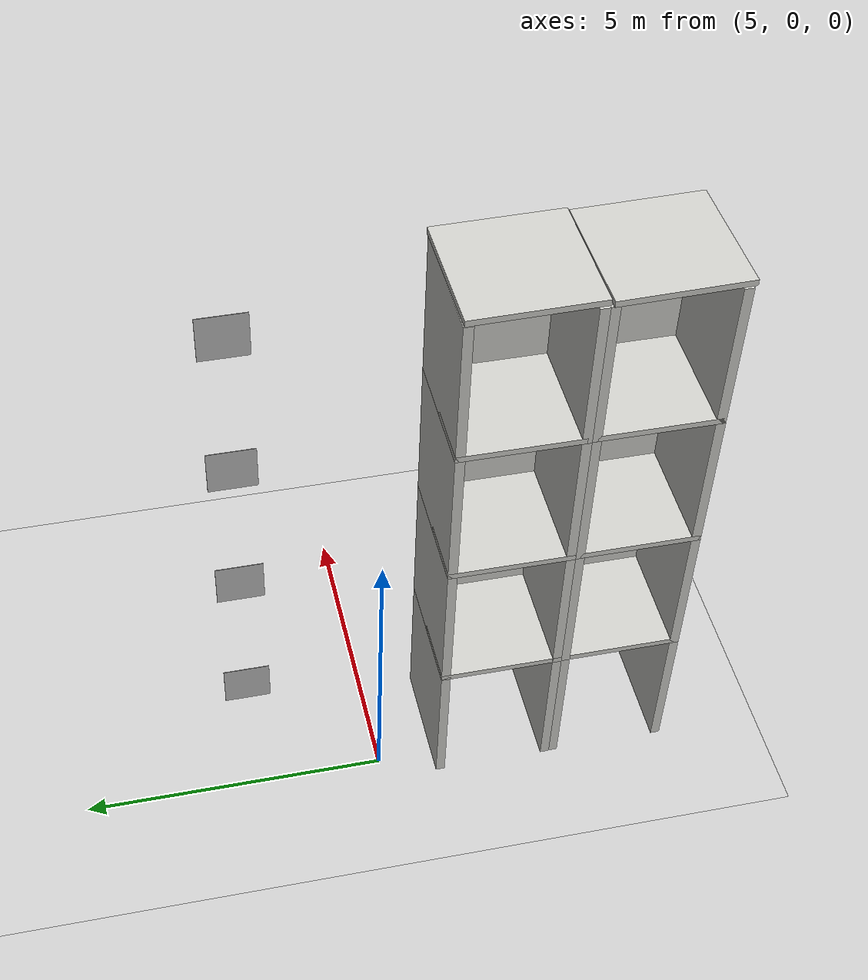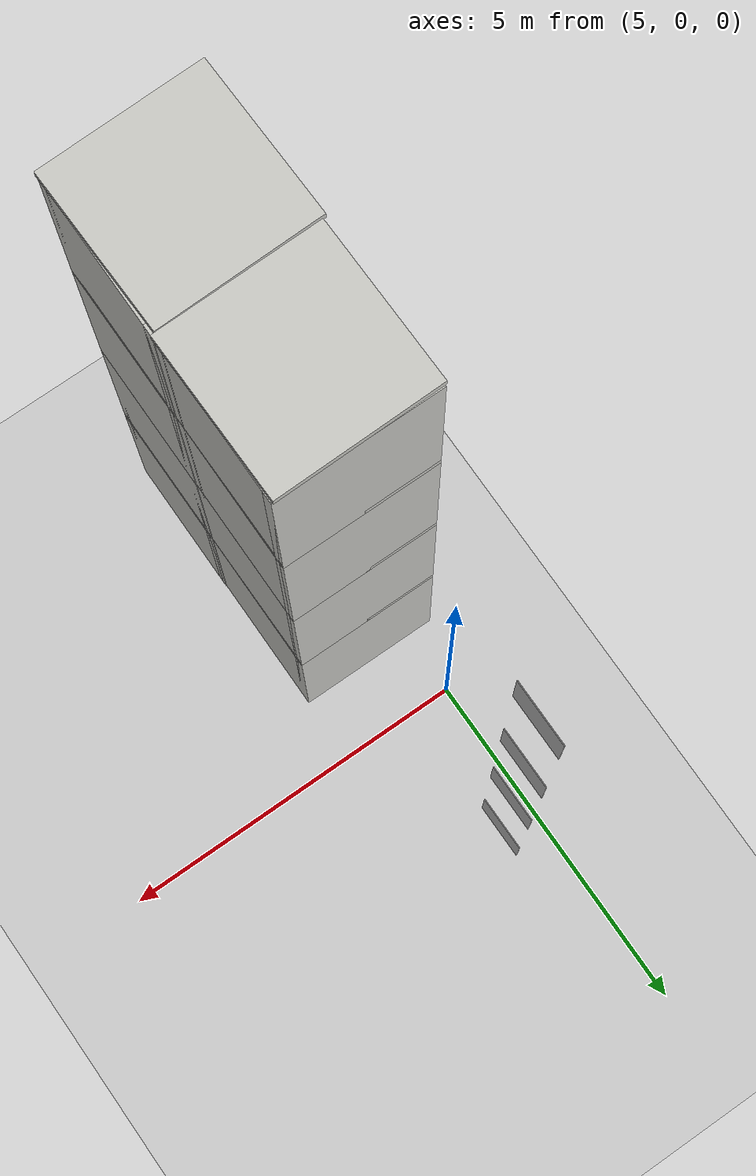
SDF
<sdf version="1.7">
 <world name="default">
  <model name="ground_plane">
   <static>1</static>
   <link name="link">
    <collision name="collision">
     <geometry><plane><normal>0 0 1</normal><size>100 100</size></plane></geometry>
     <surface>
      <contact><collide_bitmask>65535</collide_bitmask></contact>
      <friction><ode><mu>100</mu><mu2>50</mu2></ode></friction>
     </surface>
    </collision>
    <visual name="visual">
     <cast_shadows>0</cast_shadows>
     <geometry><plane><normal>0 0 1</normal><size>100 100</size></plane></geometry>
     <material>
      <script><uri>file://media/materials/scripts/gazebo.material</uri><name>Gazebo/Grey</name></script>
     </material>
    </visual>
   </link>
  </model>
  <model name="twin_4th_building">
   <link name="Floor_1">
    <pose>-1.9225 -0.6325 2.5 0 -0 0</pose>
    <visual name="Floor_1_Visual">
     <pose>0 0 0.05 0 -0 0</pose>
     <geometry><box><size>2 2 0.1</size></box></geometry>
     <material>
      <script><uri>file://media/materials/scripts/gazebo.material</uri><name>Gazebo/CeilingTiled</name></script>
      <ambient>1 1 1 1</ambient>
      <shader type="pixel"/>
      <emissive>0 0 0 1</emissive>
     </material>
     <meta><layer>1</layer></meta>
    </visual>
    <collision name="Floor_1_Collision">
     <pose>0 0 0.05 0 -0 0</pose>
     <geometry><box><size>2 2 0.1</size></box></geometry>
     <surface>
      <friction>
       <ode><mu>1</mu><mu2>1</mu2><fdir1>0 0 0</fdir1><slip1>0</slip1><slip2>0</slip2></ode>
       <torsional>
        <coefficient>1</coefficient>
        <patch_radius>0</patch_radius>
        <surface_radius>0</surface_radius>
        <use_patch_radius>1</use_patch_radius>
        <ode><slip>0</slip></ode>
       </torsional>
      </friction>
      <bounce><restitution_coefficient>0</restitution_coefficient><threshold>1e+06</threshold></bounce>
      <contact>
       <collide_without_contact>0</collide_without_contact>
       <collide_without_contact_bitmask>1</collide_without_contact_bitmask>
       <collide_bitmask>1</collide_bitmask>
       <ode>
        <soft_cfm>0</soft_cfm>
        <soft_erp>0.2</soft_erp>
        <kp>1e+13</kp>
        <kd>1</kd>
        <max_vel>0.01</max_vel>
        <min_depth>0</min_depth>
       </ode>
       <bullet>
        <split_impulse>1</split_impulse>
        <split_impulse_penetration_threshold>-0.01</split_impulse_penetration_threshold>
        <soft_cfm>0</soft_cfm>
        <soft_erp>0.2</soft_erp>
        <kp>1e+13</kp>
        <kd>1</kd>
       </bullet>
      </contact>
     </surface>
    </collision>
   </link>
   <link name="Floor_10">
    <pose>-1.9225 -0.6325 7.5 0 -0 0</pose>
    <visual name="Floor_10_Visual">
     <pose>0 0 0.05 0 -0 0</pose>
     <geometry><box><size>2 2 0.1</size></box></geometry>
     <material>
      <script><uri>file://media/materials/scripts/gazebo.material</uri><name>Gazebo/CeilingTiled</name></script>
      <ambient>1 1 1 1</ambient>
      <shader type="pixel"/>
      <emissive>0 0 0 1</emissive>
     </material>
     <meta><layer>3</layer></meta>
    </visual>
    <collision name="Floor_10_Collision">
     <pose>0 0 0.05 0 -0 0</pose>
     <geometry><box><size>2 2 0.1</size></box></geometry>
     <surface>
      <friction>
       <ode><mu>1</mu><mu2>1</mu2><fdir1>0 0 0</fdir1><slip1>0</slip1><slip2>0</slip2></ode>
       <torsional>
        <coefficient>1</coefficient>
        <patch_radius>0</patch_radius>
        <surface_radius>0</surface_radius>
        <use_patch_radius>1</use_patch_radius>
        <ode><slip>0</slip></ode>
       </torsional>
      </friction>
      <bounce><restitution_coefficient>0</restitution_coefficient><threshold>1e+06</threshold></bounce>
      <contact>
       <collide_without_contact>0</collide_without_contact>
       <collide_without_contact_bitmask>1</collide_without_contact_bitmask>
       <collide_bitmask>1</collide_bitmask>
       <ode>
        <soft_cfm>0</soft_cfm>
        <soft_erp>0.2</soft_erp>
        <kp>1e+13</kp>
        <kd>1</kd>
        <max_vel>0.01</max_vel>
        <min_depth>0</min_depth>
       </ode>
       <bullet>
        <split_impulse>1</split_impulse>
        <split_impulse_penetration_threshold>-0.01</split_impulse_penetration_threshold>
        <soft_cfm>0</soft_cfm>
        <soft_erp>0.2</soft_erp>
        <kp>1e+13</kp>
        <kd>1</kd>
       </bullet>
      </contact>
     </surface>
    </collision>
   </link>
   <link name="Floor_10_clone">
    <pose>-1.91647 -0.637292 10.0203 0 0 -1.55375</pose>
    <visual name="Floor_10_Visual">
     <pose>0 0 0.05 0 -0 0</pose>
     <geometry><box><size>2 2 0.1</size></box></geometry>
     <material>
      <script><uri>file://media/materials/scripts/gazebo.material</uri><name>Gazebo/CeilingTiled</name></script>
      <ambient>1 1 1 1</ambient>
      <shader type="pixel"/>
      <emissive>0 0 0 1</emissive>
     </material>
     <meta><layer>3</layer></meta>
    </visual>
    <collision name="Floor_10_Collision">
     <pose>0 0 0.05 0 -0 0</pose>
     <geometry><box><size>2 2 0.1</size></box></geometry>
     <surface>
      <friction>
       <ode><mu>1</mu><mu2>1</mu2><fdir1>0 0 0</fdir1><slip1>0</slip1><slip2>0</slip2></ode>
       <torsional>
        <coefficient>1</coefficient>
        <patch_radius>0</patch_radius>
        <surface_radius>0</surface_radius>
        <use_patch_radius>1</use_patch_radius>
        <ode><slip>0</slip></ode>
       </torsional>
      </friction>
      <bounce><restitution_coefficient>0</restitution_coefficient><threshold>1e+06</threshold></bounce>
      <contact>
       <collide_without_contact>0</collide_without_contact>
       <collide_without_contact_bitmask>1</collide_without_contact_bitmask>
       <collide_bitmask>1</collide_bitmask>
       <ode>
        <soft_cfm>0</soft_cfm>
        <soft_erp>0.2</soft_erp>
        <kp>1e+13</kp>
        <kd>1</kd>
        <max_vel>0.01</max_vel>
        <min_depth>0</min_depth>
       </ode>
       <bullet>
        <split_impulse>1</split_impulse>
        <split_impulse_penetration_threshold>-0.01</split_impulse_penetration_threshold>
        <soft_cfm>0</soft_cfm>
        <soft_erp>0.2</soft_erp>
        <kp>1e+13</kp>
        <kd>1</kd>
       </bullet>
      </contact>
     </surface>
    </collision>
   </link>
   <link name="Floor_10_clone_clone">
    <pose>-3.93376 -0.629613 10.0203 0 0 -3.11619</pose>
    <visual name="Floor_10_Visual">
     <pose>0 0 0.05 0 -0 0</pose>
     <geometry><box><size>2 2 0.1</size></box></geometry>
     <material>
      <script><uri>file://media/materials/scripts/gazebo.material</uri><name>Gazebo/CeilingTiled</name></script>
      <ambient>1 1 1 1</ambient>
      <shader type="pixel"/>
      <emissive>0 0 0 1</emissive>
     </material>
     <meta><layer>3</layer></meta>
    </visual>
    <collision name="Floor_10_Collision">
     <pose>0 0 0.05 0 -0 0</pose>
     <geometry><box><size>2 2 0.1</size></box></geometry>
     <surface>
      <friction>
       <ode><mu>1</mu><mu2>1</mu2><fdir1>0 0 0</fdir1><slip1>0</slip1><slip2>0</slip2></ode>
       <torsional>
        <coefficient>1</coefficient>
        <patch_radius>0</patch_radius>
        <surface_radius>0</surface_radius>
        <use_patch_radius>1</use_patch_radius>
        <ode><slip>0</slip></ode>
       </torsional>
      </friction>
      <bounce><restitution_coefficient>0</restitution_coefficient><threshold>1e+06</threshold></bounce>
      <contact>
       <collide_without_contact>0</collide_without_contact>
       <collide_without_contact_bitmask>1</collide_without_contact_bitmask>
       <collide_bitmask>1</collide_bitmask>
       <ode>
        <soft_cfm>0</soft_cfm>
        <soft_erp>0.2</soft_erp>
        <kp>1e+13</kp>
        <kd>1</kd>
        <max_vel>0.01</max_vel>
        <min_depth>0</min_depth>
       </ode>
       <bullet>
        <split_impulse>1</split_impulse>
        <split_impulse_penetration_threshold>-0.01</split_impulse_penetration_threshold>
        <soft_cfm>0</soft_cfm>
        <soft_erp>0.2</soft_erp>
        <kp>1e+13</kp>
        <kd>1</kd>
       </bullet>
      </contact>
     </surface>
    </collision>
   </link>
   <link name="Floor_9">
    <pose>-1.9225 -0.6325 5 0 -0 0</pose>
    <visual name="Floor_9_Visual">
     <pose>0 0 0.05 0 -0 0</pose>
     <geometry><box><size>2 2 0.1</size></box></geometry>
     <material>
      <script><uri>file://media/materials/scripts/gazebo.material</uri><name>Gazebo/CeilingTiled</name></script>
      <ambient>1 1 1 1</ambient>
      <shader type="pixel"/>
      <emissive>0 0 0 1</emissive>
     </material>
     <meta><layer>2</layer></meta>
    </visual>
    <collision name="Floor_9_Collision">
     <pose>0 0 0.05 0 -0 0</pose>
     <geometry><box><size>2 2 0.1</size></box></geometry>
     <surface>
      <friction>
       <ode><mu>1</mu><mu2>1</mu2><fdir1>0 0 0</fdir1><slip1>0</slip1><slip2>0</slip2></ode>
       <torsional>
        <coefficient>1</coefficient>
        <patch_radius>0</patch_radius>
        <surface_radius>0</surface_radius>
        <use_patch_radius>1</use_patch_radius>
        <ode><slip>0</slip></ode>
       </torsional>
      </friction>
      <bounce><restitution_coefficient>0</restitution_coefficient><threshold>1e+06</threshold></bounce>
      <contact>
       <collide_without_contact>0</collide_without_contact>
       <collide_without_contact_bitmask>1</collide_without_contact_bitmask>
       <collide_bitmask>1</collide_bitmask>
       <ode>
        <soft_cfm>0</soft_cfm>
        <soft_erp>0.2</soft_erp>
        <kp>1e+13</kp>
        <kd>1</kd>
        <max_vel>0.01</max_vel>
        <min_depth>0</min_depth>
       </ode>
       <bullet>
        <split_impulse>1</split_impulse>
        <split_impulse_penetration_threshold>-0.01</split_impulse_penetration_threshold>
        <soft_cfm>0</soft_cfm>
        <soft_erp>0.2</soft_erp>
        <kp>1e+13</kp>
        <kd>1</kd>
       </bullet>
      </contact>
     </surface>
    </collision>
   </link>
   <link name="Wall_13">
    <pose>-2.8475 -0.6325 0 0 0 -1.5708</pose>
    <visual name="Wall_13_Visual">
     <pose>0 0 1.25 0 -0 0</pose>
     <geometry><box><size>2 0.15 2.5</size></box></geometry>
     <material>
      <script><uri>file://media/materials/scripts/gazebo.material</uri><name>Gazebo/CeilingTiled</name></script>
      <ambient>1 1 1 1</ambient>
      <shader type="pixel"/>
      <emissive>0 0 0 1</emissive>
     </material>
     <meta><layer>0</layer></meta>
    </visual>
    <collision name="Wall_13_Collision">
     <pose>0 0 1.25 0 -0 0</pose>
     <geometry><box><size>2 0.15 2.5</size></box></geometry>
     <surface>
      <friction>
       <ode><mu>1</mu><mu2>1</mu2><fdir1>0 0 0</fdir1><slip1>0</slip1><slip2>0</slip2></ode>
       <torsional>
        <coefficient>1</coefficient>
        <patch_radius>0</patch_radius>
        <surface_radius>0</surface_radius>
        <use_patch_radius>1</use_patch_radius>
        <ode><slip>0</slip></ode>
       </torsional>
      </friction>
      <bounce><restitution_coefficient>0</restitution_coefficient><threshold>1e+06</threshold></bounce>
      <contact>
       <collide_without_contact>0</collide_without_contact>
       <collide_without_contact_bitmask>1</collide_without_contact_bitmask>
       <collide_bitmask>1</collide_bitmask>
       <ode>
        <soft_cfm>0</soft_cfm>
        <soft_erp>0.2</soft_erp>
        <kp>1e+13</kp>
        <kd>1</kd>
        <max_vel>0.01</max_vel>
        <min_depth>0</min_depth>
       </ode>
       <bullet>
        <split_impulse>1</split_impulse>
        <split_impulse_penetration_threshold>-0.01</split_impulse_penetration_threshold>
        <soft_cfm>0</soft_cfm>
        <soft_erp>0.2</soft_erp>
        <kp>1e+13</kp>
        <kd>1</kd>
       </bullet>
      </contact>
     </surface>
    </collision>
   </link>
   <link name="Wall_14">
    <pose>-1.9225 -1.5575 0 0 -0 0</pose>
    <visual name="Wall_14_Visual">
     <pose>0 0 1.25 0 -0 0</pose>
     <geometry><box><size>2 0.15 2.5</size></box></geometry>
     <material>
      <script><uri>file://media/materials/scripts/gazebo.material</uri><name>Gazebo/CeilingTiled</name></script>
      <ambient>1 1 1 1</ambient>
      <shader type="pixel"/>
     </material>
     <meta><layer>0</layer></meta>
    </visual>
    <collision name="Wall_14_Collision">
     <pose>0 0 1.25 0 -0 0</pose>
     <geometry><box><size>2 0.15 2.5</size></box></geometry>
     <surface>
      <friction>
       <ode><mu>1</mu><mu2>1</mu2><fdir1>0 0 0</fdir1><slip1>0</slip1><slip2>0</slip2></ode>
       <torsional>
        <coefficient>1</coefficient>
        <patch_radius>0</patch_radius>
        <surface_radius>0</surface_radius>
        <use_patch_radius>1</use_patch_radius>
        <ode><slip>0</slip></ode>
       </torsional>
      </friction>
      <bounce><restitution_coefficient>0</restitution_coefficient><threshold>1e+06</threshold></bounce>
      <contact>
       <collide_without_contact>0</collide_without_contact>
       <collide_without_contact_bitmask>1</collide_without_contact_bitmask>
       <collide_bitmask>1</collide_bitmask>
       <ode>
        <soft_cfm>0</soft_cfm>
        <soft_erp>0.2</soft_erp>
        <kp>1e+13</kp>
        <kd>1</kd>
        <max_vel>0.01</max_vel>
        <min_depth>0</min_depth>
       </ode>
       <bullet>
        <split_impulse>1</split_impulse>
        <split_impulse_penetration_threshold>-0.01</split_impulse_penetration_threshold>
        <soft_cfm>0</soft_cfm>
        <soft_erp>0.2</soft_erp>
        <kp>1e+13</kp>
        <kd>1</kd>
       </bullet>
      </contact>
     </surface>
    </collision>
   </link>
   <link name="Wall_15">
    <pose>-0.9975 -0.6325 0 0 -0 1.5708</pose>
    <visual name="Wall_15_Visual">
     <pose>0 0 1.25 0 -0 0</pose>
     <geometry><box><size>2 0.15 2.5</size></box></geometry>
     <material>
      <script><uri>file://media/materials/scripts/gazebo.material</uri><name>Gazebo/CeilingTiled</name></script>
      <ambient>1 1 1 1</ambient>
      <shader type="pixel"/>
     </material>
     <meta><layer>0</layer></meta>
    </visual>
    <collision name="Wall_15_Collision">
     <pose>0 0 1.25 0 -0 0</pose>
     <geometry><box><size>2 0.15 2.5</size></box></geometry>
     <surface>
      <friction>
       <ode><mu>1</mu><mu2>1</mu2><fdir1>0 0 0</fdir1><slip1>0</slip1><slip2>0</slip2></ode>
       <torsional>
        <coefficient>1</coefficient>
        <patch_radius>0</patch_radius>
        <surface_radius>0</surface_radius>
        <use_patch_radius>1</use_patch_radius>
        <ode><slip>0</slip></ode>
       </torsional>
      </friction>
      <bounce><restitution_coefficient>0</restitution_coefficient><threshold>1e+06</threshold></bounce>
      <contact>
       <collide_without_contact>0</collide_without_contact>
       <collide_without_contact_bitmask>1</collide_without_contact_bitmask>
       <collide_bitmask>1</collide_bitmask>
       <ode>
        <soft_cfm>0</soft_cfm>
        <soft_erp>0.2</soft_erp>
        <kp>1e+13</kp>
        <kd>1</kd>
        <max_vel>0.01</max_vel>
        <min_depth>0</min_depth>
       </ode>
       <bullet>
        <split_impulse>1</split_impulse>
        <split_impulse_penetration_threshold>-0.01</split_impulse_penetration_threshold>
        <soft_cfm>0</soft_cfm>
        <soft_erp>0.2</soft_erp>
        <kp>1e+13</kp>
        <kd>1</kd>
       </bullet>
      </contact>
     </surface>
    </collision>
   </link>
   <link name="Wall_17">
    <pose>-2.8475 -0.6325 2.5 0 0 -1.5708</pose>
    <visual name="Wall_17_Visual">
     <pose>0 0 1.25 0 -0 0</pose>
     <geometry><box><size>2 0.15 2.5</size></box></geometry>
     <material>
      <script><uri>file://media/materials/scripts/gazebo.material</uri><name>Gazebo/CeilingTiled</name></script>
      <ambient>1 1 1 1</ambient>
      <shader type="pixel"/>
      <emissive>0 0 0 1</emissive>
     </material>
     <meta><layer>1</layer></meta>
    </visual>
    <collision name="Wall_17_Collision">
     <pose>0 0 1.25 0 -0 0</pose>
     <geometry><box><size>2 0.15 2.5</size></box></geometry>
     <surface>
      <friction>
       <ode><mu>1</mu><mu2>1</mu2><fdir1>0 0 0</fdir1><slip1>0</slip1><slip2>0</slip2></ode>
       <torsional>
        <coefficient>1</coefficient>
        <patch_radius>0</patch_radius>
        <surface_radius>0</surface_radius>
        <use_patch_radius>1</use_patch_radius>
        <ode><slip>0</slip></ode>
       </torsional>
      </friction>
      <bounce><restitution_coefficient>0</restitution_coefficient><threshold>1e+06</threshold></bounce>
      <contact>
       <collide_without_contact>0</collide_without_contact>
       <collide_without_contact_bitmask>1</collide_without_contact_bitmask>
       <collide_bitmask>1</collide_bitmask>
       <ode>
        <soft_cfm>0</soft_cfm>
        <soft_erp>0.2</soft_erp>
        <kp>1e+13</kp>
        <kd>1</kd>
        <max_vel>0.01</max_vel>
        <min_depth>0</min_depth>
       </ode>
       <bullet>
        <split_impulse>1</split_impulse>
        <split_impulse_penetration_threshold>-0.01</split_impulse_penetration_threshold>
        <soft_cfm>0</soft_cfm>
        <soft_erp>0.2</soft_erp>
        <kp>1e+13</kp>
        <kd>1</kd>
       </bullet>
      </contact>
     </surface>
    </collision>
   </link>
   <link name="Wall_18">
    <pose>-1.9225 -1.5575 2.5 0 -0 0</pose>
    <visual name="Wall_18_Visual">
     <pose>0 0 1.25 0 -0 0</pose>
     <geometry><box><size>2 0.15 2.5</size></box></geometry>
     <material>
      <script><uri>file://media/materials/scripts/gazebo.material</uri><name>Gazebo/CeilingTiled</name></script>
      <ambient>1 1 1 1</ambient>
      <shader type="pixel"/>
      <emissive>0 0 0 1</emissive>
     </material>
     <meta><layer>1</layer></meta>
    </visual>
    <collision name="Wall_18_Collision">
     <pose>0 0 1.25 0 -0 0</pose>
     <geometry><box><size>2 0.15 2.5</size></box></geometry>
     <surface>
      <friction>
       <ode><mu>1</mu><mu2>1</mu2><fdir1>0 0 0</fdir1><slip1>0</slip1><slip2>0</slip2></ode>
       <torsional>
        <coefficient>1</coefficient>
        <patch_radius>0</patch_radius>
        <surface_radius>0</surface_radius>
        <use_patch_radius>1</use_patch_radius>
        <ode><slip>0</slip></ode>
       </torsional>
      </friction>
      <bounce><restitution_coefficient>0</restitution_coefficient><threshold>1e+06</threshold></bounce>
      <contact>
       <collide_without_contact>0</collide_without_contact>
       <collide_without_contact_bitmask>1</collide_without_contact_bitmask>
       <collide_bitmask>1</collide_bitmask>
       <ode>
        <soft_cfm>0</soft_cfm>
        <soft_erp>0.2</soft_erp>
        <kp>1e+13</kp>
        <kd>1</kd>
        <max_vel>0.01</max_vel>
        <min_depth>0</min_depth>
       </ode>
       <bullet>
        <split_impulse>1</split_impulse>
        <split_impulse_penetration_threshold>-0.01</split_impulse_penetration_threshold>
        <soft_cfm>0</soft_cfm>
        <soft_erp>0.2</soft_erp>
        <kp>1e+13</kp>
        <kd>1</kd>
       </bullet>
      </contact>
     </surface>
    </collision>
   </link>
   <link name="Wall_19">
    <pose>-0.9975 -0.6325 2.5 0 -0 1.5708</pose>
    <visual name="Wall_19_Visual">
     <pose>0 0 1.25 0 -0 0</pose>
     <geometry><box><size>2 0.15 2.5</size></box></geometry>
     <material>
      <script><uri>file://media/materials/scripts/gazebo.material</uri><name>Gazebo/CeilingTiled</name></script>
      <ambient>1 1 1 1</ambient>
      <shader type="pixel"/>
     </material>
     <meta><layer>1</layer></meta>
    </visual>
    <collision name="Wall_19_Collision">
     <pose>0 0 1.25 0 -0 0</pose>
     <geometry><box><size>2 0.15 2.5</size></box></geometry>
     <surface>
      <friction>
       <ode><mu>1</mu><mu2>1</mu2><fdir1>0 0 0</fdir1><slip1>0</slip1><slip2>0</slip2></ode>
       <torsional>
        <coefficient>1</coefficient>
        <patch_radius>0</patch_radius>
        <surface_radius>0</surface_radius>
        <use_patch_radius>1</use_patch_radius>
        <ode><slip>0</slip></ode>
       </torsional>
      </friction>
      <bounce><restitution_coefficient>0</restitution_coefficient><threshold>1e+06</threshold></bounce>
      <contact>
       <collide_without_contact>0</collide_without_contact>
       <collide_without_contact_bitmask>1</collide_without_contact_bitmask>
       <collide_bitmask>1</collide_bitmask>
       <ode>
        <soft_cfm>0</soft_cfm>
        <soft_erp>0.2</soft_erp>
        <kp>1e+13</kp>
        <kd>1</kd>
        <max_vel>0.01</max_vel>
        <min_depth>0</min_depth>
       </ode>
       <bullet>
        <split_impulse>1</split_impulse>
        <split_impulse_penetration_threshold>-0.01</split_impulse_penetration_threshold>
        <soft_cfm>0</soft_cfm>
        <soft_erp>0.2</soft_erp>
        <kp>1e+13</kp>
        <kd>1</kd>
       </bullet>
      </contact>
     </surface>
    </collision>
   </link>
   <link name="Wall_40">
    <pose>-2.8475 -0.6325 5 0 0 -1.5708</pose>
    <visual name="Wall_40_Visual">
     <pose>0 0 1.25 0 -0 0</pose>
     <geometry><box><size>2 0.15 2.5</size></box></geometry>
     <material>
      <script><uri>file://media/materials/scripts/gazebo.material</uri><name>Gazebo/CeilingTiled</name></script>
      <ambient>1 1 1 1</ambient>
      <shader type="pixel"/>
      <emissive>0 0 0 1</emissive>
     </material>
     <meta><layer>2</layer></meta>
    </visual>
    <collision name="Wall_40_Collision">
     <pose>0 0 1.25 0 -0 0</pose>
     <geometry><box><size>2 0.15 2.5</size></box></geometry>
     <surface>
      <friction>
       <ode><mu>1</mu><mu2>1</mu2><fdir1>0 0 0</fdir1><slip1>0</slip1><slip2>0</slip2></ode>
       <torsional>
        <coefficient>1</coefficient>
        <patch_radius>0</patch_radius>
        <surface_radius>0</surface_radius>
        <use_patch_radius>1</use_patch_radius>
        <ode><slip>0</slip></ode>
       </torsional>
      </friction>
      <bounce><restitution_coefficient>0</restitution_coefficient><threshold>1e+06</threshold></bounce>
      <contact>
       <collide_without_contact>0</collide_without_contact>
       <collide_without_contact_bitmask>1</collide_without_contact_bitmask>
       <collide_bitmask>1</collide_bitmask>
       <ode>
        <soft_cfm>0</soft_cfm>
        <soft_erp>0.2</soft_erp>
        <kp>1e+13</kp>
        <kd>1</kd>
        <max_vel>0.01</max_vel>
        <min_depth>0</min_depth>
       </ode>
       <bullet>
        <split_impulse>1</split_impulse>
        <split_impulse_penetration_threshold>-0.01</split_impulse_penetration_threshold>
        <soft_cfm>0</soft_cfm>
        <soft_erp>0.2</soft_erp>
        <kp>1e+13</kp>
        <kd>1</kd>
       </bullet>
      </contact>
     </surface>
    </collision>
   </link>
   <link name="Wall_41">
    <pose>-1.9225 -1.5575 5 0 -0 0</pose>
    <visual name="Wall_41_Visual">
     <pose>0 0 1.25 0 -0 0</pose>
     <geometry><box><size>2 0.15 2.5</size></box></geometry>
     <material>
      <script><uri>file://media/materials/scripts/gazebo.material</uri><name>Gazebo/CeilingTiled</name></script>
      <ambient>1 1 1 1</ambient>
      <shader type="pixel"/>
      <emissive>0 0 0 1</emissive>
     </material>
     <meta><layer>2</layer></meta>
    </visual>
    <collision name="Wall_41_Collision">
     <pose>0 0 1.25 0 -0 0</pose>
     <geometry><box><size>2 0.15 2.5</size></box></geometry>
     <surface>
      <friction>
       <ode><mu>1</mu><mu2>1</mu2><fdir1>0 0 0</fdir1><slip1>0</slip1><slip2>0</slip2></ode>
       <torsional>
        <coefficient>1</coefficient>
        <patch_radius>0</patch_radius>
        <surface_radius>0</surface_radius>
        <use_patch_radius>1</use_patch_radius>
        <ode><slip>0</slip></ode>
       </torsional>
      </friction>
      <bounce><restitution_coefficient>0</restitution_coefficient><threshold>1e+06</threshold></bounce>
      <contact>
       <collide_without_contact>0</collide_without_contact>
       <collide_without_contact_bitmask>1</collide_without_contact_bitmask>
       <collide_bitmask>1</collide_bitmask>
       <ode>
        <soft_cfm>0</soft_cfm>
        <soft_erp>0.2</soft_erp>
        <kp>1e+13</kp>
        <kd>1</kd>
        <max_vel>0.01</max_vel>
        <min_depth>0</min_depth>
       </ode>
       <bullet>
        <split_impulse>1</split_impulse>
        <split_impulse_penetration_threshold>-0.01</split_impulse_penetration_threshold>
        <soft_cfm>0</soft_cfm>
        <soft_erp>0.2</soft_erp>
        <kp>1e+13</kp>
        <kd>1</kd>
       </bullet>
      </contact>
     </surface>
    </collision>
   </link>
   <link name="Wall_42">
    <pose>-0.9975 -0.6325 5 0 -0 1.5708</pose>
    <visual name="Wall_42_Visual">
     <pose>0 0 1.25 0 -0 0</pose>
     <geometry><box><size>2 0.15 2.5</size></box></geometry>
     <material>
      <script><uri>file://media/materials/scripts/gazebo.material</uri><name>Gazebo/CeilingTiled</name></script>
      <ambient>1 1 1 1</ambient>
      <shader type="pixel"/>
     </material>
     <meta><layer>2</layer></meta>
    </visual>
    <collision name="Wall_42_Collision">
     <pose>0 0 1.25 0 -0 0</pose>
     <geometry><box><size>2 0.15 2.5</size></box></geometry>
     <surface>
      <friction>
       <ode><mu>1</mu><mu2>1</mu2><fdir1>0 0 0</fdir1><slip1>0</slip1><slip2>0</slip2></ode>
       <torsional>
        <coefficient>1</coefficient>
        <patch_radius>0</patch_radius>
        <surface_radius>0</surface_radius>
        <use_patch_radius>1</use_patch_radius>
        <ode><slip>0</slip></ode>
       </torsional>
      </friction>
      <bounce><restitution_coefficient>0</restitution_coefficient><threshold>1e+06</threshold></bounce>
      <contact>
       <collide_without_contact>0</collide_without_contact>
       <collide_without_contact_bitmask>1</collide_without_contact_bitmask>
       <collide_bitmask>1</collide_bitmask>
       <ode>
        <soft_cfm>0</soft_cfm>
        <soft_erp>0.2</soft_erp>
        <kp>1e+13</kp>
        <kd>1</kd>
        <max_vel>0.01</max_vel>
        <min_depth>0</min_depth>
       </ode>
       <bullet>
        <split_impulse>1</split_impulse>
        <split_impulse_penetration_threshold>-0.01</split_impulse_penetration_threshold>
        <soft_cfm>0</soft_cfm>
        <soft_erp>0.2</soft_erp>
        <kp>1e+13</kp>
        <kd>1</kd>
       </bullet>
      </contact>
     </surface>
    </collision>
   </link>
   <link name="Wall_43">
    <pose>-2.8475 -0.6325 7.5 0 0 -1.5708</pose>
    <visual name="Wall_43_Visual">
     <pose>0 0 1.25 0 -0 0</pose>
     <geometry><box><size>2 0.15 2.5</size></box></geometry>
     <material>
      <script><uri>file://media/materials/scripts/gazebo.material</uri><name>Gazebo/CeilingTiled</name></script>
      <ambient>1 1 1 1</ambient>
      <shader type="pixel"/>
      <emissive>0 0 0 1</emissive>
     </material>
     <meta><layer>3</layer></meta>
    </visual>
    <collision name="Wall_43_Collision">
     <pose>0 0 1.25 0 -0 0</pose>
     <geometry><box><size>2 0.15 2.5</size></box></geometry>
     <surface>
      <friction>
       <ode><mu>1</mu><mu2>1</mu2><fdir1>0 0 0</fdir1><slip1>0</slip1><slip2>0</slip2></ode>
       <torsional>
        <coefficient>1</coefficient>
        <patch_radius>0</patch_radius>
        <surface_radius>0</surface_radius>
        <use_patch_radius>1</use_patch_radius>
        <ode><slip>0</slip></ode>
       </torsional>
      </friction>
      <bounce><restitution_coefficient>0</restitution_coefficient><threshold>1e+06</threshold></bounce>
      <contact>
       <collide_without_contact>0</collide_without_contact>
       <collide_without_contact_bitmask>1</collide_without_contact_bitmask>
       <collide_bitmask>1</collide_bitmask>
       <ode>
        <soft_cfm>0</soft_cfm>
        <soft_erp>0.2</soft_erp>
        <kp>1e+13</kp>
        <kd>1</kd>
        <max_vel>0.01</max_vel>
        <min_depth>0</min_depth>
       </ode>
       <bullet>
        <split_impulse>1</split_impulse>
        <split_impulse_penetration_threshold>-0.01</split_impulse_penetration_threshold>
        <soft_cfm>0</soft_cfm>
        <soft_erp>0.2</soft_erp>
        <kp>1e+13</kp>
        <kd>1</kd>
       </bullet>
      </contact>
     </surface>
    </collision>
   </link>
   <link name="Wall_44">
    <pose>-1.9225 -1.5575 7.5 0 -0 0</pose>
    <visual name="Wall_44_Visual">
     <pose>0 0 1.25 0 -0 0</pose>
     <geometry><box><size>2 0.15 2.5</size></box></geometry>
     <material>
      <script><uri>file://media/materials/scripts/gazebo.material</uri><name>Gazebo/CeilingTiled</name></script>
      <ambient>1 1 1 1</ambient>
      <shader type="pixel"/>
      <emissive>0 0 0 1</emissive>
     </material>
     <meta><layer>3</layer></meta>
    </visual>
    <collision name="Wall_44_Collision">
     <pose>0 0 1.25 0 -0 0</pose>
     <geometry><box><size>2 0.15 2.5</size></box></geometry>
     <surface>
      <friction>
       <ode><mu>1</mu><mu2>1</mu2><fdir1>0 0 0</fdir1><slip1>0</slip1><slip2>0</slip2></ode>
       <torsional>
        <coefficient>1</coefficient>
        <patch_radius>0</patch_radius>
        <surface_radius>0</surface_radius>
        <use_patch_radius>1</use_patch_radius>
        <ode><slip>0</slip></ode>
       </torsional>
      </friction>
      <bounce><restitution_coefficient>0</restitution_coefficient><threshold>1e+06</threshold></bounce>
      <contact>
       <collide_without_contact>0</collide_without_contact>
       <collide_without_contact_bitmask>1</collide_without_contact_bitmask>
       <collide_bitmask>1</collide_bitmask>
       <ode>
        <soft_cfm>0</soft_cfm>
        <soft_erp>0.2</soft_erp>
        <kp>1e+13</kp>
        <kd>1</kd>
        <max_vel>0.01</max_vel>
        <min_depth>0</min_depth>
       </ode>
       <bullet>
        <split_impulse>1</split_impulse>
        <split_impulse_penetration_threshold>-0.01</split_impulse_penetration_threshold>
        <soft_cfm>0</soft_cfm>
        <soft_erp>0.2</soft_erp>
        <kp>1e+13</kp>
        <kd>1</kd>
       </bullet>
      </contact>
     </surface>
    </collision>
   </link>
   <link name="Wall_45">
    <pose>-0.9975 -0.6325 7.5 0 -0 1.5708</pose>
    <visual name="Wall_45_Visual">
     <pose>0 0 1.25 0 -0 0</pose>
     <geometry><box><size>2 0.15 2.5</size></box></geometry>
     <material>
      <script><uri>file://media/materials/scripts/gazebo.material</uri><name>Gazebo/CeilingTiled</name></script>
      <ambient>1 1 1 1</ambient>
      <shader type="pixel"/>
     </material>
     <meta><layer>3</layer></meta>
    </visual>
    <collision name="Wall_45_Collision">
     <pose>0 0 1.25 0 -0 0</pose>
     <geometry><box><size>2 0.15 2.5</size></box></geometry>
     <surface>
      <friction>
       <ode><mu>1</mu><mu2>1</mu2><fdir1>0 0 0</fdir1><slip1>0</slip1><slip2>0</slip2></ode>
       <torsional>
        <coefficient>1</coefficient>
        <patch_radius>0</patch_radius>
        <surface_radius>0</surface_radius>
        <use_patch_radius>1</use_patch_radius>
        <ode><slip>0</slip></ode>
       </torsional>
      </friction>
      <bounce><restitution_coefficient>0</restitution_coefficient><threshold>1e+06</threshold></bounce>
      <contact>
       <collide_without_contact>0</collide_without_contact>
       <collide_without_contact_bitmask>1</collide_without_contact_bitmask>
       <collide_bitmask>1</collide_bitmask>
       <ode>
        <soft_cfm>0</soft_cfm>
        <soft_erp>0.2</soft_erp>
        <kp>1e+13</kp>
        <kd>1</kd>
        <max_vel>0.01</max_vel>
        <min_depth>0</min_depth>
       </ode>
       <bullet>
        <split_impulse>1</split_impulse>
        <split_impulse_penetration_threshold>-0.01</split_impulse_penetration_threshold>
        <soft_cfm>0</soft_cfm>
        <soft_erp>0.2</soft_erp>
        <kp>1e+13</kp>
        <kd>1</kd>
       </bullet>
      </contact>
     </surface>
    </collision>
   </link>
   <model name="4th_building">
    <pose>-1.99386 -0.00682 0 0 -0 0</pose>
    <link name="Floor_1">
     <collision name="Floor_1_Collision">
      <geometry><box><size>2 2 0.1</size></box></geometry>
      <pose>0 0 0.05 0 -0 0</pose>
     </collision>
     <visual name="Floor_1_Visual">
      <pose>0 0 0.05 0 -0 0</pose>
      <geometry><box><size>2 2 0.1</size></box></geometry>
      <material>
       <script><uri>file://media/materials/scripts/gazebo.material</uri><name>Gazebo/CeilingTiled</name></script>
       <ambient>1 1 1 1</ambient>
      </material>
      <meta><layer>1</layer></meta>
     </visual>
     <pose>-1.9225 -0.6325 2.5 0 -0 0</pose>
    </link>
    <link name="Floor_10">
     <collision name="Floor_10_Collision">
      <geometry><box><size>2 2 0.1</size></box></geometry>
      <pose>0 0 0.05 0 -0 0</pose>
     </collision>
     <visual name="Floor_10_Visual">
      <pose>0 0 0.05 0 -0 0</pose>
      <geometry><box><size>2 2 0.1</size></box></geometry>
      <material>
       <script><uri>file://media/materials/scripts/gazebo.material</uri><name>Gazebo/CeilingTiled</name></script>
       <ambient>1 1 1 1</ambient>
      </material>
      <meta><layer>3</layer></meta>
     </visual>
     <pose>-1.9225 -0.6325 7.5 0 -0 0</pose>
    </link>
    <link name="Floor_9">
     <collision name="Floor_9_Collision">
      <geometry><box><size>2 2 0.1</size></box></geometry>
      <pose>0 0 0.05 0 -0 0</pose>
     </collision>
     <visual name="Floor_9_Visual">
      <pose>0 0 0.05 0 -0 0</pose>
      <geometry><box><size>2 2 0.1</size></box></geometry>
      <material>
       <script><uri>file://media/materials/scripts/gazebo.material</uri><name>Gazebo/CeilingTiled</name></script>
       <ambient>1 1 1 1</ambient>
      </material>
      <meta><layer>2</layer></meta>
     </visual>
     <pose>-1.9225 -0.6325 5 0 -0 0</pose>
    </link>
    <link name="Wall_13">
     <collision name="Wall_13_Collision">
      <geometry><box><size>2 0.15 2.5</size></box></geometry>
      <pose>0 0 1.25 0 -0 0</pose>
     </collision>
     <visual name="Wall_13_Visual">
      <pose>0 0 1.25 0 -0 0</pose>
      <geometry><box><size>2 0.15 2.5</size></box></geometry>
      <material>
       <script><uri>file://media/materials/scripts/gazebo.material</uri><name>Gazebo/CeilingTiled</name></script>
       <ambient>1 1 1 1</ambient>
      </material>
      <meta><layer>0</layer></meta>
     </visual>
     <pose>-2.8475 -0.6325 0 0 -0 -1.5708</pose>
    </link>
    <link name="Wall_14">
     <collision name="Wall_14_Collision">
      <geometry><box><size>2 0.15 2.5</size></box></geometry>
      <pose>0 0 1.25 0 -0 0</pose>
     </collision>
     <visual name="Wall_14_Visual">
      <pose>0 0 1.25 0 -0 0</pose>
      <geometry><box><size>2 0.15 2.5</size></box></geometry>
      <material>
       <script><uri>file://media/materials/scripts/gazebo.material</uri><name>Gazebo/CeilingTiled</name></script>
       <ambient>1 1 1 1</ambient>
      </material>
      <meta><layer>0</layer></meta>
     </visual>
     <pose>-1.9225 -1.5575 0 0 -0 0</pose>
    </link>
    <link name="Wall_15">
     <collision name="Wall_15_Collision">
      <geometry><box><size>2 0.15 2.5</size></box></geometry>
      <pose>0 0 1.25 0 -0 0</pose>
     </collision>
     <visual name="Wall_15_Visual">
      <pose>0 0 1.25 0 -0 0</pose>
      <geometry><box><size>2 0.15 2.5</size></box></geometry>
      <material>
       <script><uri>file://media/materials/scripts/gazebo.material</uri><name>Gazebo/CeilingTiled</name></script>
       <ambient>1 1 1 1</ambient>
      </material>
      <meta><layer>0</layer></meta>
     </visual>
     <pose>-0.9975 -0.6325 0 0 -0 1.5708</pose>
    </link>
    <link name="Wall_17">
     <collision name="Wall_17_Collision">
      <geometry><box><size>2 0.15 2.5</size></box></geometry>
      <pose>0 0 1.25 0 -0 0</pose>
     </collision>
     <visual name="Wall_17_Visual">
      <pose>0 0 1.25 0 -0 0</pose>
      <geometry><box><size>2 0.15 2.5</size></box></geometry>
      <material>
       <script><uri>file://media/materials/scripts/gazebo.material</uri><name>Gazebo/CeilingTiled</name></script>
       <ambient>1 1 1 1</ambient>
      </material>
      <meta><layer>1</layer></meta>
     </visual>
     <pose>-2.8475 -0.6325 2.5 0 -0 -1.5708</pose>
    </link>
    <link name="Wall_18">
     <collision name="Wall_18_Collision">
      <geometry><box><size>2 0.15 2.5</size></box></geometry>
      <pose>0 0 1.25 0 -0 0</pose>
     </collision>
     <visual name="Wall_18_Visual">
      <pose>0 0 1.25 0 -0 0</pose>
      <geometry><box><size>2 0.15 2.5</size></box></geometry>
      <material>
       <script><uri>file://media/materials/scripts/gazebo.material</uri><name>Gazebo/CeilingTiled</name></script>
       <ambient>1 1 1 1</ambient>
      </material>
      <meta><layer>1</layer></meta>
     </visual>
     <pose>-1.9225 -1.5575 2.5 0 -0 0</pose>
    </link>
    <link name="Wall_19">
     <collision name="Wall_19_Collision">
      <geometry><box><size>2 0.15 2.5</size></box></geometry>
      <pose>0 0 1.25 0 -0 0</pose>
     </collision>
     <visual name="Wall_19_Visual">
      <pose>0 0 1.25 0 -0 0</pose>
      <geometry><box><size>2 0.15 2.5</size></box></geometry>
      <material>
       <script><uri>file://media/materials/scripts/gazebo.material</uri><name>Gazebo/CeilingTiled</name></script>
       <ambient>1 1 1 1</ambient>
      </material>
      <meta><layer>1</layer></meta>
     </visual>
     <pose>-0.9975 -0.6325 2.5 0 -0 1.5708</pose>
    </link>
    <link name="Wall_40">
     <collision name="Wall_40_Collision">
      <geometry><box><size>2 0.15 2.5</size></box></geometry>
      <pose>0 0 1.25 0 -0 0</pose>
     </collision>
     <visual name="Wall_40_Visual">
      <pose>0 0 1.25 0 -0 0</pose>
      <geometry><box><size>2 0.15 2.5</size></box></geometry>
      <material>
       <script><uri>file://media/materials/scripts/gazebo.material</uri><name>Gazebo/CeilingTiled</name></script>
       <ambient>1 1 1 1</ambient>
      </material>
      <meta><layer>2</layer></meta>
     </visual>
     <pose>-2.8475 -0.6325 5 0 -0 -1.5708</pose>
    </link>
    <link name="Wall_41">
     <collision name="Wall_41_Collision">
      <geometry><box><size>2 0.15 2.5</size></box></geometry>
      <pose>0 0 1.25 0 -0 0</pose>
     </collision>
     <visual name="Wall_41_Visual">
      <pose>0 0 1.25 0 -0 0</pose>
      <geometry><box><size>2 0.15 2.5</size></box></geometry>
      <material>
       <script><uri>file://media/materials/scripts/gazebo.material</uri><name>Gazebo/CeilingTiled</name></script>
       <ambient>1 1 1 1</ambient>
      </material>
      <meta><layer>2</layer></meta>
     </visual>
     <pose>-1.9225 -1.5575 5 0 -0 0</pose>
    </link>
    <link name="Wall_42">
     <collision name="Wall_42_Collision">
      <geometry><box><size>2 0.15 2.5</size></box></geometry>
      <pose>0 0 1.25 0 -0 0</pose>
     </collision>
     <visual name="Wall_42_Visual">
      <pose>0 0 1.25 0 -0 0</pose>
      <geometry><box><size>2 0.15 2.5</size></box></geometry>
      <material>
       <script><uri>file://media/materials/scripts/gazebo.material</uri><name>Gazebo/CeilingTiled</name></script>
       <ambient>1 1 1 1</ambient>
      </material>
      <meta><layer>2</layer></meta>
     </visual>
     <pose>-0.9975 -0.6325 5 0 -0 1.5708</pose>
    </link>
    <link name="Wall_43">
     <collision name="Wall_43_Collision">
      <geometry><box><size>2 0.15 2.5</size></box></geometry>
      <pose>0 0 1.25 0 -0 0</pose>
     </collision>
     <visual name="Wall_43_Visual">
      <pose>0 0 1.25 0 -0 0</pose>
      <geometry><box><size>2 0.15 2.5</size></box></geometry>
      <material>
       <script><uri>file://media/materials/scripts/gazebo.material</uri><name>Gazebo/CeilingTiled</name></script>
       <ambient>1 1 1 1</ambient>
      </material>
      <meta><layer>3</layer></meta>
     </visual>
     <pose>-2.8475 -0.6325 7.5 0 -0 -1.5708</pose>
    </link>
    <link name="Wall_44">
     <collision name="Wall_44_Collision">
      <geometry><box><size>2 0.15 2.5</size></box></geometry>
      <pose>0 0 1.25 0 -0 0</pose>
     </collision>
     <visual name="Wall_44_Visual">
      <pose>0 0 1.25 0 -0 0</pose>
      <geometry><box><size>2 0.15 2.5</size></box></geometry>
      <material>
       <script><uri>file://media/materials/scripts/gazebo.material</uri><name>Gazebo/CeilingTiled</name></script>
       <ambient>1 1 1 1</ambient>
      </material>
      <meta><layer>3</layer></meta>
     </visual>
     <pose>-1.9225 -1.5575 7.5 0 -0 0</pose>
    </link>
    <link name="Wall_45">
     <collision name="Wall_45_Collision">
      <geometry><box><size>2 0.15 2.5</size></box></geometry>
      <pose>0 0 1.25 0 -0 0</pose>
     </collision>
     <visual name="Wall_45_Visual">
      <pose>0 0 1.25 0 -0 0</pose>
      <geometry><box><size>2 0.15 2.5</size></box></geometry>
      <material>
       <script><uri>file://media/materials/scripts/gazebo.material</uri><name>Gazebo/CeilingTiled</name></script>
       <ambient>1 1 1 1</ambient>
      </material>
      <meta><layer>3</layer></meta>
     </visual>
     <pose>-0.9975 -0.6325 7.5 0 -0 1.5708</pose>
    </link>
    <static>1</static>
   </model>
   <joint name="Wall_13_JOINT_4" type="revolute">
    <parent>Wall_13</parent>
    <child>4th_building::Wall_15</child>
    <axis>
     <xyz>1 0 0</xyz>
     <limit>
      <lower>-1.79769e+308</lower>
      <upper>1.79769e+308</upper>
      <effort>-1</effort>
      <velocity>-1</velocity>
     </limit>
     <dynamics>
      <spring_reference>0</spring_reference>
      <spring_stiffness>0</spring_stiffness>
      <damping>0</damping>
      <friction>0</friction>
     </dynamics>
    </axis>
    <physics>
     <ode><limit><cfm>0</cfm><erp>0.2</erp></limit><suspension><cfm>0</cfm><erp>0.2</erp></suspension></ode>
    </physics>
   </joint>
   <joint name="Wall_17_JOINT_3" type="revolute">
    <parent>Wall_17</parent>
    <child>4th_building::Wall_19</child>
    <axis>
     <xyz>1 0 0</xyz>
     <limit>
      <lower>-1.79769e+308</lower>
      <upper>1.79769e+308</upper>
      <effort>-1</effort>
      <velocity>-1</velocity>
     </limit>
     <dynamics>
      <spring_reference>0</spring_reference>
      <spring_stiffness>0</spring_stiffness>
      <damping>0</damping>
      <friction>0</friction>
     </dynamics>
    </axis>
    <physics>
     <ode><limit><cfm>0</cfm><erp>0.2</erp></limit><suspension><cfm>0</cfm><erp>0.2</erp></suspension></ode>
    </physics>
   </joint>
   <joint name="Wall_40_JOINT_2" type="revolute">
    <parent>Wall_40</parent>
    <child>4th_building::Wall_42</child>
    <axis>
     <xyz>1 0 0</xyz>
     <limit>
      <lower>-1.79769e+308</lower>
      <upper>1.79769e+308</upper>
      <effort>-1</effort>
      <velocity>-1</velocity>
     </limit>
     <dynamics>
      <spring_reference>0</spring_reference>
      <spring_stiffness>0</spring_stiffness>
      <damping>0</damping>
      <friction>0</friction>
     </dynamics>
    </axis>
    <physics>
     <ode><limit><cfm>0</cfm><erp>0.2</erp></limit><suspension><cfm>0</cfm><erp>0.2</erp></suspension></ode>
    </physics>
   </joint>
   <joint name="Wall_43_JOINT_1" type="fixed">
    <parent>Wall_43</parent>
    <child>4th_building::Wall_45</child>
    <physics>
     <ode><limit><cfm>0</cfm><erp>0.2</erp></limit><suspension><cfm>0</cfm><erp>0.2</erp></suspension></ode>
    </physics>
   </joint>
   <static>1</static>
   <pose>5 3e-06 0 0 -0 1.57</pose>
  </model>
  <model name="WayPoint3_prac">
   <static>1</static>
   <link name="link">
    <collision name="collision"><geometry><box><size>0.75 0.01 0.75</size></box></geometry></collision>
    <visual name="visual">
     <geometry><box><size>0.75 0.01 0.75</size></box></geometry>
     <material>
      <script>
       <uri>model://WayPoint3_prac/materials/scripts</uri>
       <uri>model://WayPoint3_prac/materials/textures</uri>
       <name>vrc/WayPoint3_prac</name>
      </script>
     </material>
    </visual>
   </link>
   <pose>5.7 2.1 9.45 0 0 -1.57</pose>
  </model>
  <model name="WayPoint3_prac2">
   <static>1</static>
   <link name="link">
    <collision name="collision"><geometry><box><size>0.75 0.01 0.75</size></box></geometry></collision>
    <visual name="visual">
     <geometry><box><size>0.75 0.01 0.75</size></box></geometry>
     <material>
      <script>
       <uri>model://WayPoint3_prac2/materials/scripts</uri>
       <uri>model://WayPoint3_prac2/materials/textures</uri>
       <name>vrc/WayPoint3_prac2</name>
      </script>
     </material>
    </visual>
   </link>
   <pose>5.7 2.1 6.9 0 0 -1.57</pose>
  </model>
  <model name="WayPoint4_prac">
   <static>1</static>
   <link name="link">
    <collision name="collision"><geometry><box><size>0.75 0.01 0.75</size></box></geometry></collision>
    <visual name="visual">
     <geometry><box><size>0.75 0.01 0.75</size></box></geometry>
     <material>
      <script>
       <uri>model://WayPoint4_prac/materials/scripts</uri>
       <uri>model://WayPoint4_prac/materials/textures</uri>
       <name>vrc/WayPoint4_prac</name>
      </script>
     </material>
    </visual>
   </link>
   <pose>5.7 2.1 4.4 0 0 -1.57</pose>
  </model>
  <model name="WayPoint4_prac2">
   <static>1</static>
   <link name="link">
    <collision name="collision"><geometry><box><size>0.75 0.01 0.75</size></box></geometry></collision>
    <visual name="visual">
     <geometry><box><size>0.75 0.01 0.75</size></box></geometry>
     <material>
      <script>
       <uri>model://WayPoint4_prac2/materials/scripts</uri>
       <uri>model://WayPoint4_prac2/materials/textures</uri>
       <name>vrc/WayPoint4_prac2</name>
      </script>
     </material>
    </visual>
   </link>
   <pose>5.7 2.1 1.85 0 0 -1.57</pose>
  </model>
 </world>
</sdf>
